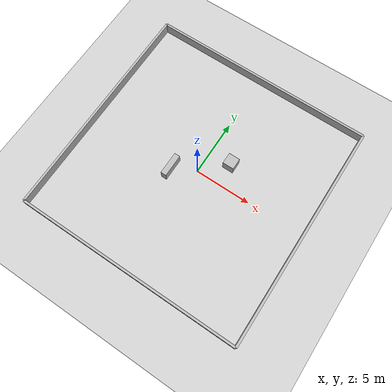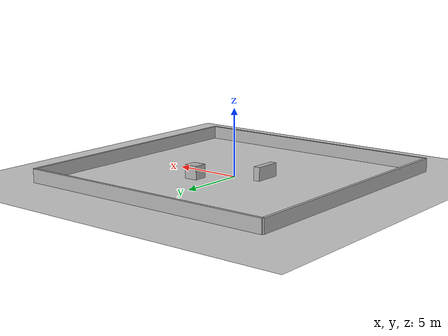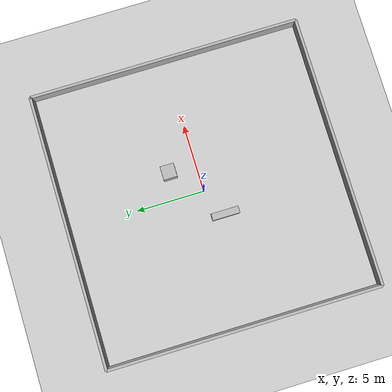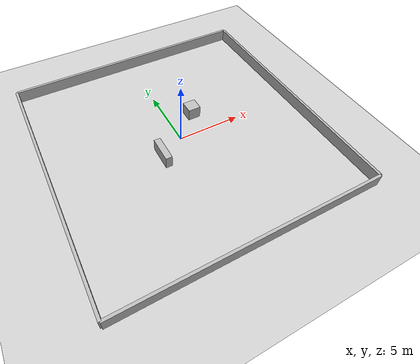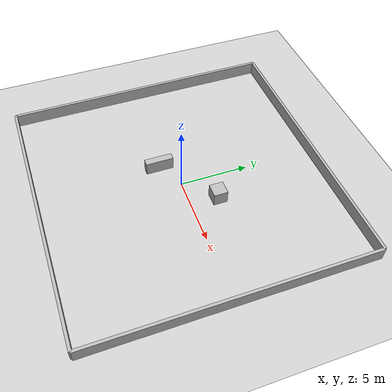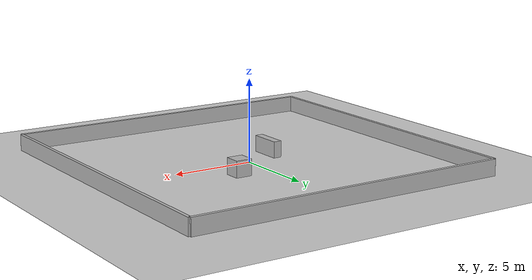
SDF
<sdf version="1.10">
 <world name="smallroom">
  <plugin filename="gz-sim-physics-system" name="gz::sim::systems::Physics"/>
  <plugin filename="gz-sim-user-commands-system" name="gz::sim::systems::UserCommands"/>
  <plugin filename="gz-sim-scene-broadcaster-system" name="gz::sim::systems::SceneBroadcaster"/>
  <plugin filename="gz-sim-sensors-system" name="gz::sim::systems::Sensors">
   <render_engine>ogre2</render_engine>
  </plugin>
  <plugin filename="gz-sim-imu-system" name="gz::sim::systems::Imu"/>
  <light name="sun" type="directional">
   <pose>0 0 10 0 0 0</pose>
   <intensity>0.9</intensity>
   <direction>-0.5 0.2 -1</direction>
  </light>
  <model name="ground_plane">
   <static>true</static>
   <link name="link">
    <collision name="collision">
     <geometry><plane><normal>0 0 1</normal><size>40 40</size></plane></geometry>
    </collision>
    <visual name="visual">
     <geometry><plane><normal>0 0 1</normal><size>40 40</size></plane></geometry>
     <material><ambient>0.8 0.8 0.8 1</ambient><diffuse>0.8 0.8 0.8 1</diffuse></material>
    </visual>
   </link>
  </model>
  <model name="walls">
   <static>true</static>
   <pose>0 0 0.5 0 0 0</pose>
   <link name="wall1">
    <pose>0 10 0 0 0 0</pose>
    <collision name="c"><geometry><box><size>20 0.2 1</size></box></geometry></collision>
    <visual name="v"><geometry><box><size>20 0.2 1</size></box></geometry></visual>
   </link>
   <link name="wall2">
    <pose>0 -10 0 0 0 0</pose>
    <collision name="c"><geometry><box><size>20 0.2 1</size></box></geometry></collision>
    <visual name="v"><geometry><box><size>20 0.2 1</size></box></geometry></visual>
   </link>
   <link name="wall3">
    <pose>10 0 0 0 0 0</pose>
    <collision name="c"><geometry><box><size>0.2 20 1</size></box></geometry></collision>
    <visual name="v"><geometry><box><size>0.2 20 1</size></box></geometry></visual>
   </link>
   <link name="wall4">
    <pose>-10 0 0 0 0 0</pose>
    <collision name="c"><geometry><box><size>0.2 20 1</size></box></geometry></collision>
    <visual name="v"><geometry><box><size>0.2 20 1</size></box></geometry></visual>
   </link>
  </model>
  <model name="box1">
   <static>true</static>
   <pose>2 2 0.5 0 0 0</pose>
   <link name="l">
    <collision name="c"><geometry><box><size>1 1 1</size></box></geometry></collision>
    <visual name="v"><geometry><box><size>1 1 1</size></box></geometry></visual>
   </link>
  </model>
  <model name="box2">
   <static>true</static>
   <pose>-2 -1 0.5 0 0 0</pose>
   <link name="l">
    <collision name="c"><geometry><box><size>0.5 2 1</size></box></geometry></collision>
    <visual name="v"><geometry><box><size>0.5 2 1</size></box></geometry></visual>
   </link>
  </model>
 </world>
</sdf>
